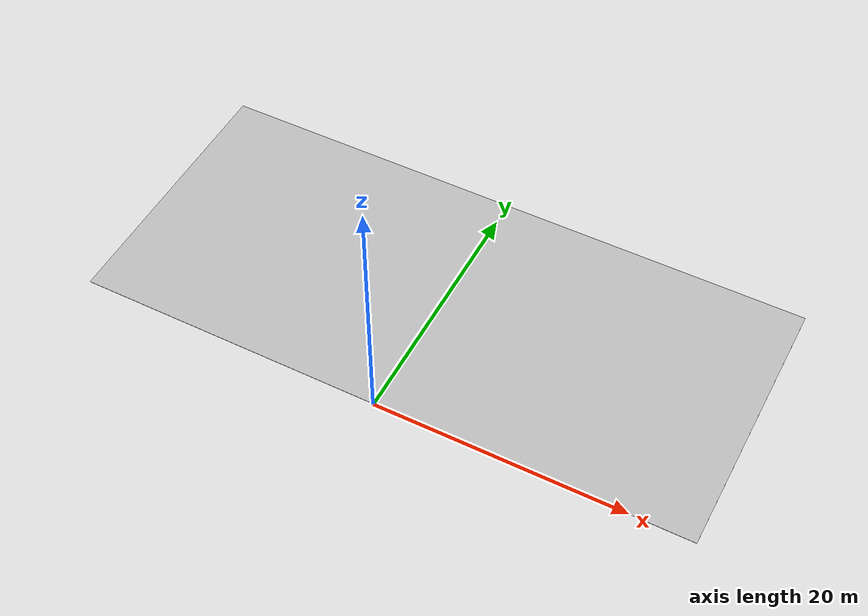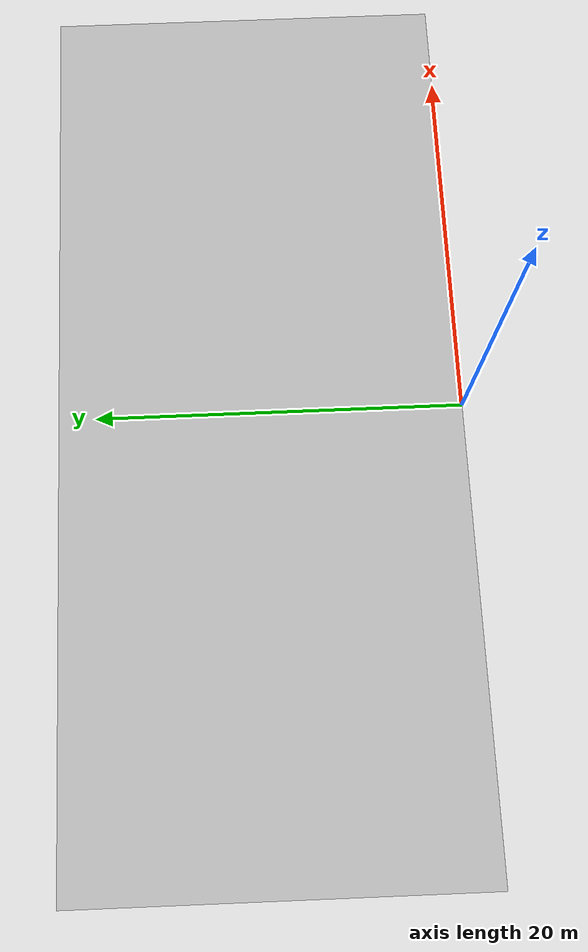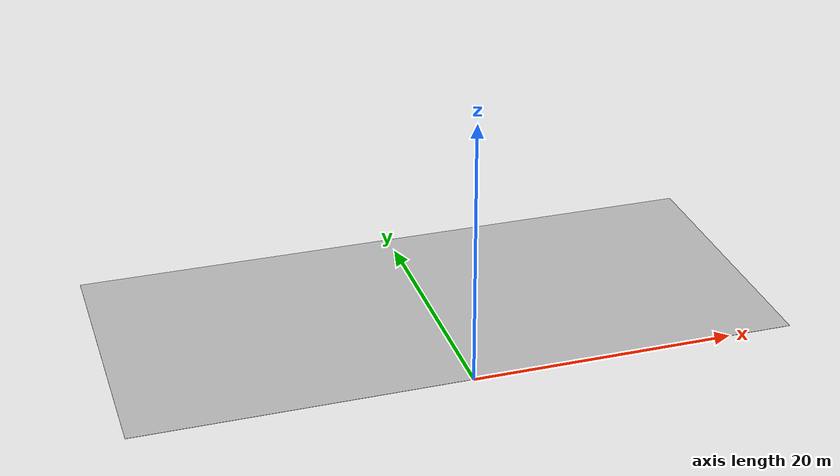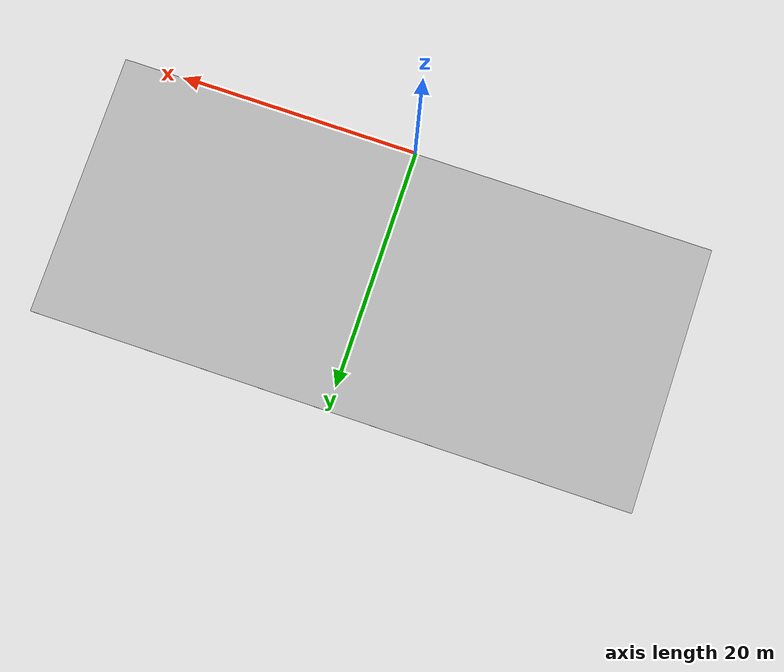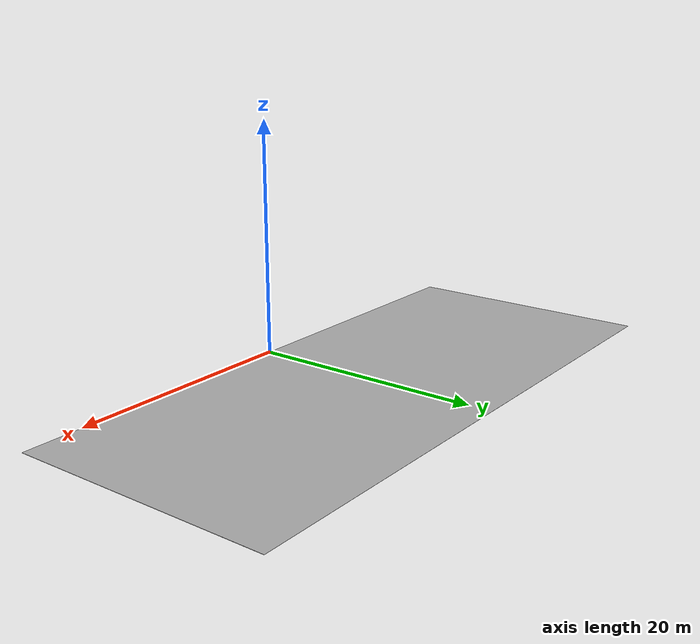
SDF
<?xml version="1.0"?>
<sdf version="1.6">
  <world name="default">

    <physics type="ode">
      <real_time_update_rate>500.0</real_time_update_rate>
      <max_step_size>0.002</max_step_size>
      <real_time_factor>1</real_time_factor>
      <ode>
        <solver>
          <type>quick</type>
          <iters>300</iters>
          <precon_iters>0</precon_iters>
          <sor>1.400000</sor>
          <use_dynamic_moi_rescaling>1</use_dynamic_moi_rescaling>
        </solver>
        <constraints>
          <cfm>0.000000</cfm>
          <erp>0.800000</erp>
          <contact_max_correcting_vel>2000.000000</contact_max_correcting_vel>
          <contact_surface_layer>0.01000</contact_surface_layer>
        </constraints>
      </ode>
    </physics>

    <!-- Scene -->
    <scene>
      <ambient>0.8 0.8 0.8 1.0</ambient>
      <background>0.66 0.77 0.84 1.0</background>
      <grid>0</grid>
      <origin_visual>0</origin_visual>
    </scene>

    <!-- Light just so some objects are shaded -->
    <light name='directional_light' type='directional'>
      <pose>0.0 0.0 -100.0 0 0 0</pose>
      <diffuse>0.5 0.5 0.5 1</diffuse>
      <specular>0.1 0.1 0.1 1</specular>
      <direction>0.1 0.1 -0.9</direction>
      <attenuation>
        <range>20</range>
        <constant>0.5</constant>
        <linear>0.01</linear>
        <quadratic>0.001</quadratic>
      </attenuation>
      <cast_shadows>0</cast_shadows>
    </light>

    <!-- Ceiling -->

    <model name="ceiling">
      <pose>
        0
        11
        3.0
        0
        3.141592653589793
        0
      </pose>

      <static>true</static>
      <link name="link">
        <visual name="visual">
          <geometry>
            <plane>
              <normal>0 0 1</normal>
              <size>50 22</size>
            </plane>
          </geometry>
          <material>
            <script>
              <uri>file://media/materials/scripts/</uri>
              <uri>file://media/materials/textures/</uri>
              <name>ServiceSim/Ceiling</name>
            </script>
          </material>
        </visual>
      </link>

    </model>

    <!-- Floor -->

    <model name="floor">
      <pose>
        0
        11
        -0.001
        0
        0
        0
      </pose>

      <static>true</static>
      <link name="link">
        <visual name="visual">
          <geometry>
            <plane>
              <normal>0 0 1</normal>
              <size>50 22</size>
            </plane>
          </geometry>
          <material>
            <script>
              <uri>file://media/materials/scripts/</uri>
              <uri>file://media/materials/textures/</uri>
              <name>ServiceSim/Hallway</name>
            </script>
          </material>
        </visual>

        <collision name="collision">
          <geometry>
            <plane>
              <normal>0 0 1</normal>
              <size>50 22</size>
            </plane>
          </geometry>
          <surface>
            <friction>
              <ode>
                <mu>1</mu>
                <mu2>1</mu2>
              </ode>
            </friction>
          </surface>
        </collision>

      </link>

    </model>

    <!-- GUI -->
    <gui fullscreen='0'>
      <camera name='user_camera'>
        <pose>
          11.97535653560282
          4.75
          1.5
          0.0
          0.6
          -2.356194490192345
        </pose>
      </camera>
    </gui>

  </world>
</sdf>
